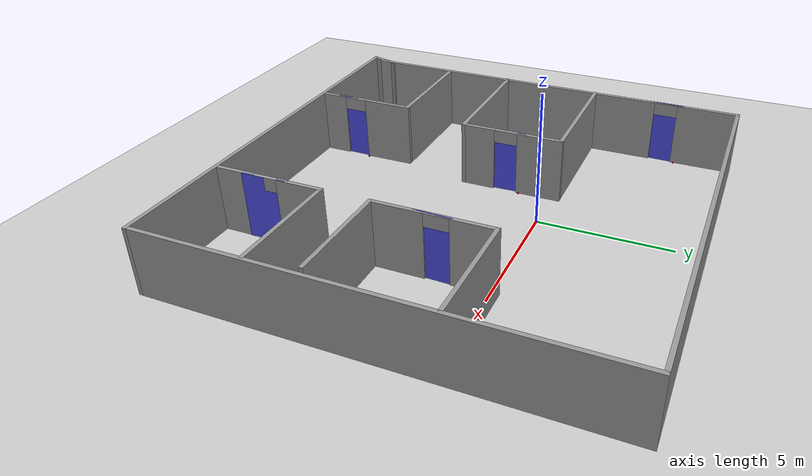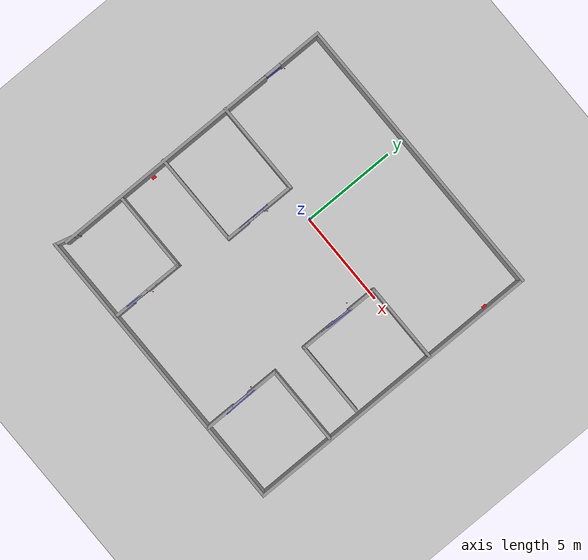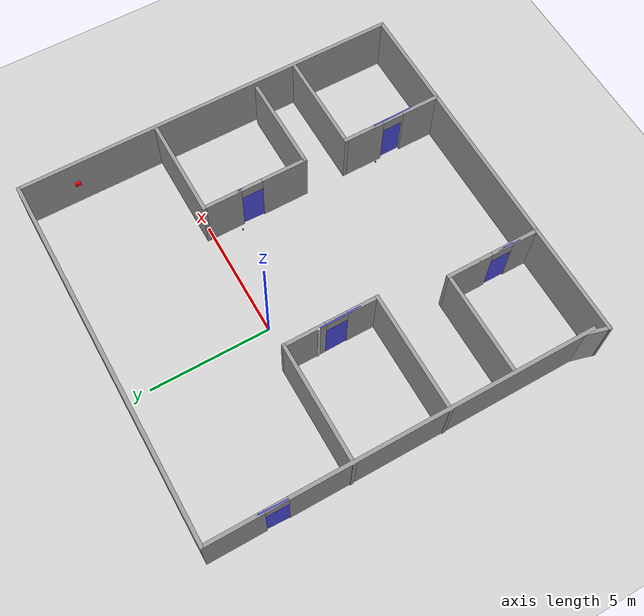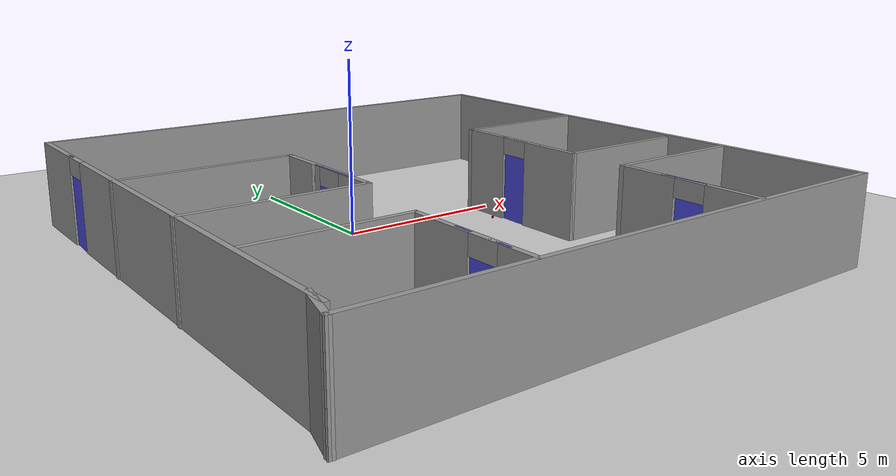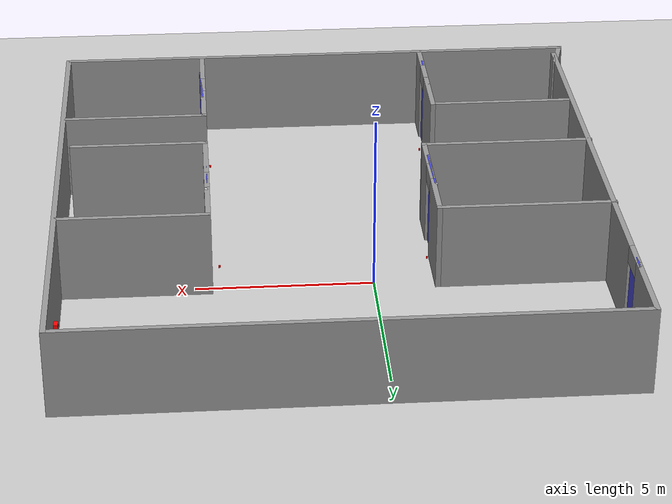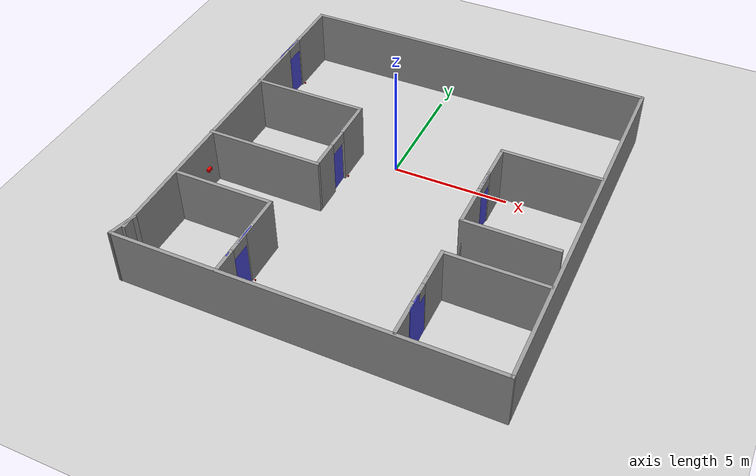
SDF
<sdf version="1.7">
 <world name="default">
  <light name="sun" type="directional">
   <pose>0 0 10 0 -0 0</pose>
   <diffuse>0.8 0.8 0.8 1</diffuse>
   <specular>0.2 0.2 0.2 1</specular>
   <attenuation>
    <range>1000</range>
    <constant>0.9</constant>
    <linear>0.01</linear>
    <quadratic>0.001</quadratic>
   </attenuation>
   <direction>-0.5 0.1 -0.9</direction>
   <spot><inner_angle>0</inner_angle><outer_angle>0</outer_angle><falloff>0</falloff></spot>
  </light>
  <model name="ground_plane">
   <static>1</static>
   <link name="link">
    <collision name="collision">
     <geometry><plane><normal>0 0 1</normal><size>100 100</size></plane></geometry>
     <surface><friction><ode><mu>100</mu><mu2>50</mu2></ode></friction></surface>
    </collision>
    <visual name="visual">
     <cast_shadows>0</cast_shadows>
     <geometry><plane><normal>0 0 1</normal><size>100 100</size></plane></geometry>
     <material>
      <script><uri>file://media/materials/scripts/gazebo.material</uri><name>Gazebo/Grey</name></script>
     </material>
    </visual>
   </link>
  </model>
  <gravity>0 0 -9.8</gravity>
  <magnetic_field>6e-06 2.3e-05 -4.2e-05</magnetic_field>
  <atmosphere type="adiabatic"/>
  <physics type="ode">
   <max_step_size>0.001</max_step_size>
   <real_time_factor>1</real_time_factor>
   <real_time_update_rate>1000</real_time_update_rate>
  </physics>
  <scene><ambient>0.4 0.4 0.4 1</ambient><background>0.7 0.7 0.7 1</background><shadows>1</shadows></scene>
  <spherical_coordinates>
   <surface_model>EARTH_WGS84</surface_model>
   <latitude_deg>0</latitude_deg>
   <longitude_deg>0</longitude_deg>
   <elevation>0</elevation>
   <heading_deg>0</heading_deg>
  </spherical_coordinates>
  <model name="jampworld2">
   <pose>0.955665 -2.09991 0 0 -0 0</pose>
   <link name="Wall_0">
    <pose>-7.54157 0.258428 0 0 -0 1.5708</pose>
    <visual name="Wall_0_Visual_0">
     <pose>-1.63923 0 1.25 0 -0 0</pose>
     <geometry><box><size>12.4715 0.15 2.5</size></box></geometry>
     <material>
      <script><uri>file://media/materials/scripts/gazebo.material</uri><name>Gazebo/Grey</name></script>
      <ambient>1 1 1 1</ambient>
     </material>
     <meta><layer>0</layer></meta>
    </visual>
    <collision name="Wall_0_Collision_0">
     <geometry><box><size>12.4715 0.15 2.5</size></box></geometry>
     <pose>-1.63923 0 1.25 0 -0 0</pose>
    </collision>
    <visual name="Wall_0_Visual_1">
     <pose>6.68577 0 1.25 0 -0 0</pose>
     <geometry><box><size>2.37845 0.15 2.5</size></box></geometry>
     <material>
      <script><uri>file://media/materials/scripts/gazebo.material</uri><name>Gazebo/Grey</name></script>
      <ambient>1 1 1 1</ambient>
     </material>
     <meta><layer>0</layer></meta>
    </visual>
    <collision name="Wall_0_Collision_1">
     <geometry><box><size>2.37845 0.15 2.5</size></box></geometry>
     <pose>6.68577 0 1.25 0 -0 0</pose>
    </collision>
    <visual name="Wall_0_Visual_2">
     <pose>5.04655 0 2.25 0 -0 0</pose>
     <geometry><box><size>0.9 0.15 0.5</size></box></geometry>
     <material>
      <script><uri>file://media/materials/scripts/gazebo.material</uri><name>Gazebo/Grey</name></script>
      <ambient>1 1 1 1</ambient>
     </material>
     <meta><layer>0</layer></meta>
    </visual>
    <collision name="Wall_0_Collision_2">
     <geometry><box><size>0.9 0.15 0.5</size></box></geometry>
     <pose>5.04655 0 2.25 0 -0 0</pose>
    </collision>
   </link>
   <link name="Wall_1">
    <collision name="Wall_1_Collision">
     <geometry><box><size>15.5 0.15 2.5</size></box></geometry>
     <pose>0 0 1.25 0 -0 0</pose>
    </collision>
    <visual name="Wall_1_Visual">
     <pose>0 0 1.25 0 -0 0</pose>
     <geometry><box><size>15.5 0.15 2.5</size></box></geometry>
     <material>
      <script><uri>file://media/materials/scripts/gazebo.material</uri><name>Gazebo/Grey</name></script>
      <ambient>1 1 1 1</ambient>
     </material>
     <meta><layer>0</layer></meta>
    </visual>
    <pose>0.133427 8.05843 0 0 -0 0</pose>
   </link>
   <link name="Wall_10">
    <collision name="Wall_10_Collision">
     <geometry><box><size>4.25 0.15 2.5</size></box></geometry>
     <pose>0 0 1.25 0 -0 0</pose>
    </collision>
    <visual name="Wall_10_Visual">
     <pose>0 0 1.25 0 -0 0</pose>
     <geometry><box><size>4.25 0.15 2.5</size></box></geometry>
     <material>
      <script><uri>file://media/materials/scripts/gazebo.material</uri><name>Gazebo/Grey</name></script>
      <ambient>1 1 1 1</ambient>
     </material>
     <meta><layer>0</layer></meta>
    </visual>
    <pose>5.67359 2.30713 0 0 -0 3.14159</pose>
   </link>
   <link name="Wall_11">
    <pose>3.62359 0.132134 0 0 -0 -1.5708</pose>
    <visual name="Wall_11_Visual_0">
     <pose>-1.42802 0 1.25 0 -0 0</pose>
     <geometry><box><size>1.64396 0.15 2.5</size></box></geometry>
     <material>
      <script><uri>file://media/materials/scripts/gazebo.material</uri><name>Gazebo/Grey</name></script>
      <ambient>1 1 1 1</ambient>
     </material>
     <meta><layer>0</layer></meta>
    </visual>
    <collision name="Wall_11_Collision_0">
     <geometry><box><size>1.64396 0.15 2.5</size></box></geometry>
     <pose>-1.42802 0 1.25 0 -0 0</pose>
    </collision>
    <visual name="Wall_11_Visual_1">
     <pose>1.27198 0 1.25 0 -0 0</pose>
     <geometry><box><size>1.95605 0.15 2.5</size></box></geometry>
     <material>
      <script><uri>file://media/materials/scripts/gazebo.material</uri><name>Gazebo/Grey</name></script>
      <ambient>1 1 1 1</ambient>
     </material>
     <meta><layer>0</layer></meta>
    </visual>
    <collision name="Wall_11_Collision_1">
     <geometry><box><size>1.95605 0.15 2.5</size></box></geometry>
     <pose>1.27198 0 1.25 0 -0 0</pose>
    </collision>
    <visual name="Wall_11_Visual_2">
     <pose>-0.156045 0 2.25 0 -0 0</pose>
     <geometry><box><size>0.9 0.15 0.5</size></box></geometry>
     <material>
      <script><uri>file://media/materials/scripts/gazebo.material</uri><name>Gazebo/Grey</name></script>
      <ambient>1 1 1 1</ambient>
     </material>
     <meta><layer>0</layer></meta>
    </visual>
    <collision name="Wall_11_Collision_2">
     <geometry><box><size>0.9 0.15 0.5</size></box></geometry>
     <pose>-0.156045 0 2.25 0 -0 0</pose>
    </collision>
   </link>
   <link name="Wall_12">
    <collision name="Wall_12_Collision">
     <geometry><box><size>4 0.15 2.5</size></box></geometry>
     <pose>0 0 1.25 0 -0 0</pose>
    </collision>
    <visual name="Wall_12_Visual">
     <pose>0 0 1.25 0 -0 0</pose>
     <geometry><box><size>4 0.15 2.5</size></box></geometry>
     <material>
      <script><uri>file://media/materials/scripts/gazebo.material</uri><name>Gazebo/Grey</name></script>
      <ambient>1 1 1 1</ambient>
     </material>
     <meta><layer>0</layer></meta>
    </visual>
    <pose>5.54859 -2.04287 0 0 -0 0</pose>
   </link>
   <link name="Wall_14">
    <collision name="Wall_14_Collision">
     <geometry><box><size>4.25 0.15 2.5</size></box></geometry>
     <pose>0 0 1.25 0 -0 0</pose>
    </collision>
    <visual name="Wall_14_Visual">
     <pose>0 0 1.25 0 -0 0</pose>
     <geometry><box><size>4.25 0.15 2.5</size></box></geometry>
     <material>
      <script><uri>file://media/materials/scripts/gazebo.material</uri><name>Gazebo/Grey</name></script>
      <ambient>1 1 1 1</ambient>
     </material>
     <meta><layer>0</layer></meta>
    </visual>
    <pose>-5.33799 -4.178 0 0 -0 0</pose>
   </link>
   <link name="Wall_15">
    <pose>-3.28799 -6.10299 0 0 -0 -1.5708</pose>
    <visual name="Wall_15_Visual_0">
     <pose>-1.02507 0 1.25 0 -0 0</pose>
     <geometry><box><size>1.94986 0.15 2.5</size></box></geometry>
     <material>
      <script><uri>file://media/materials/scripts/gazebo.material</uri><name>Gazebo/Grey</name></script>
      <ambient>1 1 1 1</ambient>
     </material>
     <meta><layer>0</layer></meta>
    </visual>
    <collision name="Wall_15_Collision_0">
     <geometry><box><size>1.94986 0.15 2.5</size></box></geometry>
     <pose>-1.02507 0 1.25 0 -0 0</pose>
    </collision>
    <visual name="Wall_15_Visual_1">
     <pose>1.42493 0 1.25 0 -0 0</pose>
     <geometry><box><size>1.15014 0.15 2.5</size></box></geometry>
     <material>
      <script><uri>file://media/materials/scripts/gazebo.material</uri><name>Gazebo/Grey</name></script>
      <ambient>1 1 1 1</ambient>
     </material>
     <meta><layer>0</layer></meta>
    </visual>
    <collision name="Wall_15_Collision_1">
     <geometry><box><size>1.15014 0.15 2.5</size></box></geometry>
     <pose>1.42493 0 1.25 0 -0 0</pose>
    </collision>
    <visual name="Wall_15_Visual_2">
     <pose>0.399857 0 2.25 0 -0 0</pose>
     <geometry><box><size>0.9 0.15 0.5</size></box></geometry>
     <material>
      <script><uri>file://media/materials/scripts/gazebo.material</uri><name>Gazebo/Grey</name></script>
      <ambient>1 1 1 1</ambient>
     </material>
     <meta><layer>0</layer></meta>
    </visual>
    <collision name="Wall_15_Collision_2">
     <geometry><box><size>0.9 0.15 0.5</size></box></geometry>
     <pose>0.399857 0 2.25 0 -0 0</pose>
    </collision>
   </link>
   <link name="Wall_17">
    <collision name="Wall_17_Collision">
     <geometry><box><size>4.25 0.15 2.5</size></box></geometry>
     <pose>0 0 1.25 0 -0 0</pose>
    </collision>
    <visual name="Wall_17_Visual">
     <pose>0 0 1.25 0 -0 0</pose>
     <geometry><box><size>4.25 0.15 2.5</size></box></geometry>
     <material>
      <script><uri>file://media/materials/scripts/gazebo.material</uri><name>Gazebo/Grey</name></script>
      <ambient>1 1 1 1</ambient>
     </material>
     <meta><layer>0</layer></meta>
    </visual>
    <pose>5.67359 -3.87209 0 0 -0 3.14159</pose>
   </link>
   <link name="Wall_18">
    <pose>3.62359 -5.92209 0 0 -0 -1.5708</pose>
    <visual name="Wall_18_Visual_0">
     <pose>-1.24184 0 1.25 0 -0 0</pose>
     <geometry><box><size>1.76632 0.15 2.5</size></box></geometry>
     <material>
      <script><uri>file://media/materials/scripts/gazebo.material</uri><name>Gazebo/Grey</name></script>
      <ambient>1 1 1 1</ambient>
     </material>
     <meta><layer>0</layer></meta>
    </visual>
    <collision name="Wall_18_Collision_0">
     <geometry><box><size>1.76632 0.15 2.5</size></box></geometry>
     <pose>-1.24184 0 1.25 0 -0 0</pose>
    </collision>
    <visual name="Wall_18_Visual_1">
     <pose>1.33316 0 1.25 0 -0 0</pose>
     <geometry><box><size>1.58368 0.15 2.5</size></box></geometry>
     <material>
      <script><uri>file://media/materials/scripts/gazebo.material</uri><name>Gazebo/Grey</name></script>
      <ambient>1 1 1 1</ambient>
     </material>
     <meta><layer>0</layer></meta>
    </visual>
    <collision name="Wall_18_Collision_1">
     <geometry><box><size>1.58368 0.15 2.5</size></box></geometry>
     <pose>1.33316 0 1.25 0 -0 0</pose>
    </collision>
    <visual name="Wall_18_Visual_2">
     <pose>0.091316 0 2.25 0 -0 0</pose>
     <geometry><box><size>0.9 0.15 0.5</size></box></geometry>
     <material>
      <script><uri>file://media/materials/scripts/gazebo.material</uri><name>Gazebo/Grey</name></script>
      <ambient>1 1 1 1</ambient>
     </material>
     <meta><layer>0</layer></meta>
    </visual>
    <collision name="Wall_18_Collision_2">
     <geometry><box><size>0.9 0.15 0.5</size></box></geometry>
     <pose>0.091316 0 2.25 0 -0 0</pose>
    </collision>
   </link>
   <link name="Wall_2">
    <collision name="Wall_2_Collision">
     <geometry><box><size>16.25 0.15 2.5</size></box></geometry>
     <pose>0 0 1.25 0 -0 0</pose>
    </collision>
    <visual name="Wall_2_Visual">
     <pose>0 0 1.25 0 -0 0</pose>
     <geometry><box><size>16.25 0.15 2.5</size></box></geometry>
     <material>
      <script><uri>file://media/materials/scripts/gazebo.material</uri><name>Gazebo/Grey</name></script>
      <ambient>1 1 1 1</ambient>
     </material>
     <meta><layer>0</layer></meta>
    </visual>
    <pose>7.80843 0.008428 0 0 -0 -1.5708</pose>
   </link>
   <link name="Wall_3">
    <collision name="Wall_3_Collision">
     <geometry><box><size>15.75 0.15 2.5</size></box></geometry>
     <pose>0 0 1.25 0 -0 0</pose>
    </collision>
    <visual name="Wall_3_Visual">
     <pose>0 0 1.25 0 -0 0</pose>
     <geometry><box><size>15.75 0.15 2.5</size></box></geometry>
     <material>
      <script><uri>file://media/materials/scripts/gazebo.material</uri><name>Gazebo/Grey</name></script>
      <ambient>1 1 1 1</ambient>
     </material>
     <meta><layer>0</layer></meta>
    </visual>
    <pose>0.008427 -8.04157 0 0 -0 3.14159</pose>
   </link>
   <link name="Wall_4">
    <collision name="Wall_4_Collision">
     <geometry><box><size>1.25 0.15 2.5</size></box></geometry>
     <pose>0 0 1.25 0 -0 0</pose>
    </collision>
    <visual name="Wall_4_Visual">
     <pose>0 0 1.25 0 -0 0</pose>
     <geometry><box><size>1.25 0.15 2.5</size></box></geometry>
     <material>
      <script><uri>file://media/materials/scripts/gazebo.material</uri><name>Gazebo/Grey</name></script>
      <ambient>1 1 1 1</ambient>
     </material>
     <meta><layer>0</layer></meta>
    </visual>
    <pose>-7.64922 -7.51031 0 0 -0 1.309</pose>
   </link>
   <link name="Wall_6">
    <collision name="Wall_6_Collision">
     <geometry><box><size>5 0.15 2.5</size></box></geometry>
     <pose>0 0 1.25 0 -0 0</pose>
    </collision>
    <visual name="Wall_6_Visual">
     <pose>0 0 1.25 0 -0 0</pose>
     <geometry><box><size>5 0.15 2.5</size></box></geometry>
     <material>
      <script><uri>file://media/materials/scripts/gazebo.material</uri><name>Gazebo/Grey</name></script>
      <ambient>1 1 1 1</ambient>
     </material>
     <meta><layer>0</layer></meta>
    </visual>
    <pose>-5.14653 2.36831 0 0 -0 0</pose>
   </link>
   <link name="Wall_7">
    <pose>-2.72153 0.443314 0 0 -0 -1.5708</pose>
    <visual name="Wall_7_Visual_0">
     <pose>-1.11684 0 1.25 0 -0 0</pose>
     <geometry><box><size>1.76632 0.15 2.5</size></box></geometry>
     <material>
      <script><uri>file://media/materials/scripts/gazebo.material</uri><name>Gazebo/Grey</name></script>
      <ambient>1 1 1 1</ambient>
     </material>
     <meta><layer>0</layer></meta>
    </visual>
    <collision name="Wall_7_Collision_0">
     <geometry><box><size>1.76632 0.15 2.5</size></box></geometry>
     <pose>-1.11684 0 1.25 0 -0 0</pose>
    </collision>
    <visual name="Wall_7_Visual_1">
     <pose>1.33316 0 1.25 0 -0 0</pose>
     <geometry><box><size>1.33368 0.15 2.5</size></box></geometry>
     <material>
      <script><uri>file://media/materials/scripts/gazebo.material</uri><name>Gazebo/Grey</name></script>
      <ambient>1 1 1 1</ambient>
     </material>
     <meta><layer>0</layer></meta>
    </visual>
    <collision name="Wall_7_Collision_1">
     <geometry><box><size>1.33368 0.15 2.5</size></box></geometry>
     <pose>1.33316 0 1.25 0 -0 0</pose>
    </collision>
    <visual name="Wall_7_Visual_2">
     <pose>0.216316 0 2.25 0 -0 0</pose>
     <geometry><box><size>0.9 0.15 0.5</size></box></geometry>
     <material>
      <script><uri>file://media/materials/scripts/gazebo.material</uri><name>Gazebo/Grey</name></script>
      <ambient>1 1 1 1</ambient>
     </material>
     <meta><layer>0</layer></meta>
    </visual>
    <collision name="Wall_7_Collision_2">
     <geometry><box><size>0.9 0.15 0.5</size></box></geometry>
     <pose>0.216316 0 2.25 0 -0 0</pose>
    </collision>
   </link>
   <link name="Wall_8">
    <collision name="Wall_8_Collision">
     <geometry><box><size>5 0.15 2.5</size></box></geometry>
     <pose>0 0 1.25 0 -0 0</pose>
    </collision>
    <visual name="Wall_8_Visual">
     <pose>0 0 1.25 0 -0 0</pose>
     <geometry><box><size>5 0.15 2.5</size></box></geometry>
     <material>
      <script><uri>file://media/materials/scripts/gazebo.material</uri><name>Gazebo/Grey</name></script>
      <ambient>1 1 1 1</ambient>
     </material>
     <meta><layer>0</layer></meta>
    </visual>
    <pose>-5.14653 -1.48169 0 0 -0 3.14159</pose>
   </link>
   <static>1</static>
  </model>
  <model name="door_customn1">
   <link name="door_frame">
    <pose>0.883124 0.004995 1.25 0 -0 0</pose>
    <kinematic>1</kinematic>
    <inertial>
     <inertia><ixx>1</ixx><ixy>0</ixy><ixz>0</ixz><iyy>1</iyy><iyz>0</iyz><izz>1</izz></inertia>
     <mass>1</mass>
    </inertial>
    <visual name="frame_visual">
     <geometry><box><size>0.1 0.1 2.5</size></box></geometry>
     <material>
      <ambient>0.7 0.7 0.7 1</ambient>
      <diffuse>0.8 0.8 0.8 1</diffuse>
      <shader type="pixel"/>
      <script><name>ModelPreview_9::door_frame::frame_visual_MATERIAL_</name><uri>__default__</uri></script>
     </material>
    </visual>
    <collision name="frame_collision">
     <geometry><box><size>0.1 1 2.5</size></box></geometry>
     <surface>
      <friction>
       <ode><mu>1</mu><mu2>1</mu2><fdir1>0 0 0</fdir1><slip1>0</slip1><slip2>0</slip2></ode>
       <torsional>
        <coefficient>1</coefficient>
        <patch_radius>0</patch_radius>
        <surface_radius>0</surface_radius>
        <use_patch_radius>1</use_patch_radius>
        <ode><slip>0</slip></ode>
       </torsional>
      </friction>
      <bounce><restitution_coefficient>0</restitution_coefficient><threshold>1e+06</threshold></bounce>
      <contact>
       <collide_without_contact>0</collide_without_contact>
       <collide_without_contact_bitmask>1</collide_without_contact_bitmask>
       <collide_bitmask>1</collide_bitmask>
       <ode>
        <soft_cfm>0</soft_cfm>
        <soft_erp>0.2</soft_erp>
        <kp>1e+13</kp>
        <kd>1</kd>
        <max_vel>0.01</max_vel>
        <min_depth>0</min_depth>
       </ode>
       <bullet>
        <split_impulse>1</split_impulse>
        <split_impulse_penetration_threshold>-0.01</split_impulse_penetration_threshold>
        <soft_cfm>0</soft_cfm>
        <soft_erp>0.2</soft_erp>
        <kp>1e+13</kp>
        <kd>1</kd>
       </bullet>
      </contact>
     </surface>
    </collision>
   </link>
   <link name="door">
    <kinematic>1</kinematic>
    <pose>0 0 1.25 0 -0 0</pose>
    <inertial>
     <inertia><ixx>1.83367</ixx><ixy>0</ixy><ixz>0</ixz><iyy>2.74098</iyy><iyz>0</iyz><izz>0.90878</izz></inertia>
     <mass>3.51924</mass>
    </inertial>
    <visual name="door_visual">
     <geometry><box><size>1.75963 0.05 2.5</size></box></geometry>
     <material>
      <ambient>0.2 0.2 0.8 1</ambient>
      <diffuse>0.3 0.3 0.9 1</diffuse>
      <shader type="pixel"/>
      <script><name>ModelPreview_9::door::door_visual_MATERIAL_</name><uri>__default__</uri></script>
     </material>
    </visual>
    <collision name="door_collision">
     <geometry><box><size>1.75963 0.05 2.5</size></box></geometry>
     <surface>
      <friction>
       <ode><mu>1</mu><mu2>1</mu2><fdir1>0 0 0</fdir1><slip1>0</slip1><slip2>0</slip2></ode>
       <torsional>
        <coefficient>1</coefficient>
        <patch_radius>0</patch_radius>
        <surface_radius>0</surface_radius>
        <use_patch_radius>1</use_patch_radius>
        <ode><slip>0</slip></ode>
       </torsional>
      </friction>
      <bounce><restitution_coefficient>0</restitution_coefficient><threshold>1e+06</threshold></bounce>
      <contact>
       <collide_without_contact>0</collide_without_contact>
       <collide_without_contact_bitmask>1</collide_without_contact_bitmask>
       <collide_bitmask>1</collide_bitmask>
       <ode>
        <soft_cfm>0</soft_cfm>
        <soft_erp>0.2</soft_erp>
        <kp>1e+13</kp>
        <kd>1</kd>
        <max_vel>0.01</max_vel>
        <min_depth>0</min_depth>
       </ode>
       <bullet>
        <split_impulse>1</split_impulse>
        <split_impulse_penetration_threshold>-0.01</split_impulse_penetration_threshold>
        <soft_cfm>0</soft_cfm>
        <soft_erp>0.2</soft_erp>
        <kp>1e+13</kp>
        <kd>1</kd>
       </bullet>
      </contact>
     </surface>
    </collision>
   </link>
   <joint name="door_joint" type="prismatic">
    <parent>door_frame</parent>
    <child>door</child>
    <axis>
     <xyz>1 0 0</xyz>
     <limit><lower>0</lower><upper>0.5</upper><effort>-1</effort><velocity>-1</velocity></limit>
     <dynamics>
      <spring_reference>0</spring_reference>
      <spring_stiffness>0</spring_stiffness>
      <damping>0</damping>
      <friction>0</friction>
     </dynamics>
    </axis>
    <physics>
     <ode><limit><cfm>0</cfm><erp>0.2</erp></limit><suspension><cfm>0</cfm><erp>0.2</erp></suspension></ode>
    </physics>
   </joint>
   <static>0</static>
   <plugin name="door_control_plugin" filename="libdoor_control_plugin.so">
    <door_joint>door_joint</door_joint>
    <speed>1.0</speed>
    <open_target>1.0</open_target>
    <close_target>0.0</close_target>
   </plugin>
   <pose>-1.79968 -1.99812 0 0 -0 1.58547</pose>
  </model>
  <model name="door_customn1_0">
   <link name="door_frame">
    <pose>0.883124 0.004995 1.25 0 -0 0</pose>
    <kinematic>1</kinematic>
    <inertial>
     <inertia><ixx>1</ixx><ixy>0</ixy><ixz>0</ixz><iyy>1</iyy><iyz>0</iyz><izz>1</izz></inertia>
     <mass>1</mass>
    </inertial>
    <visual name="frame_visual">
     <geometry><box><size>0.1 0.1 2.5</size></box></geometry>
     <material>
      <ambient>0.7 0.7 0.7 1</ambient>
      <diffuse>0.8 0.8 0.8 1</diffuse>
      <shader type="pixel"/>
      <script><name>ModelPreview_9::door_frame::frame_visual_MATERIAL_</name><uri>__default__</uri></script>
     </material>
    </visual>
    <collision name="frame_collision">
     <geometry><box><size>0.1 1 2.5</size></box></geometry>
     <surface>
      <friction>
       <ode><mu>1</mu><mu2>1</mu2><fdir1>0 0 0</fdir1><slip1>0</slip1><slip2>0</slip2></ode>
       <torsional>
        <coefficient>1</coefficient>
        <patch_radius>0</patch_radius>
        <surface_radius>0</surface_radius>
        <use_patch_radius>1</use_patch_radius>
        <ode><slip>0</slip></ode>
       </torsional>
      </friction>
      <bounce><restitution_coefficient>0</restitution_coefficient><threshold>1e+06</threshold></bounce>
      <contact>
       <collide_without_contact>0</collide_without_contact>
       <collide_without_contact_bitmask>1</collide_without_contact_bitmask>
       <collide_bitmask>1</collide_bitmask>
       <ode>
        <soft_cfm>0</soft_cfm>
        <soft_erp>0.2</soft_erp>
        <kp>1e+13</kp>
        <kd>1</kd>
        <max_vel>0.01</max_vel>
        <min_depth>0</min_depth>
       </ode>
       <bullet>
        <split_impulse>1</split_impulse>
        <split_impulse_penetration_threshold>-0.01</split_impulse_penetration_threshold>
        <soft_cfm>0</soft_cfm>
        <soft_erp>0.2</soft_erp>
        <kp>1e+13</kp>
        <kd>1</kd>
       </bullet>
      </contact>
     </surface>
    </collision>
   </link>
   <link name="door">
    <kinematic>1</kinematic>
    <pose>0 0 1.25 0 -0 0</pose>
    <inertial>
     <inertia><ixx>1.83367</ixx><ixy>0</ixy><ixz>0</ixz><iyy>2.74098</iyy><iyz>0</iyz><izz>0.90878</izz></inertia>
     <mass>3.51924</mass>
    </inertial>
    <visual name="door_visual">
     <geometry><box><size>1.75963 0.05 2.5</size></box></geometry>
     <material>
      <ambient>0.2 0.2 0.8 1</ambient>
      <diffuse>0.3 0.3 0.9 1</diffuse>
      <shader type="pixel"/>
      <script><name>ModelPreview_9::door::door_visual_MATERIAL_</name><uri>__default__</uri></script>
     </material>
    </visual>
    <collision name="door_collision">
     <geometry><box><size>1.75963 0.05 2.5</size></box></geometry>
     <surface>
      <friction>
       <ode><mu>1</mu><mu2>1</mu2><fdir1>0 0 0</fdir1><slip1>0</slip1><slip2>0</slip2></ode>
       <torsional>
        <coefficient>1</coefficient>
        <patch_radius>0</patch_radius>
        <surface_radius>0</surface_radius>
        <use_patch_radius>1</use_patch_radius>
        <ode><slip>0</slip></ode>
       </torsional>
      </friction>
      <bounce><restitution_coefficient>0</restitution_coefficient><threshold>1e+06</threshold></bounce>
      <contact>
       <collide_without_contact>0</collide_without_contact>
       <collide_without_contact_bitmask>1</collide_without_contact_bitmask>
       <collide_bitmask>1</collide_bitmask>
       <ode>
        <soft_cfm>0</soft_cfm>
        <soft_erp>0.2</soft_erp>
        <kp>1e+13</kp>
        <kd>1</kd>
        <max_vel>0.01</max_vel>
        <min_depth>0</min_depth>
       </ode>
       <bullet>
        <split_impulse>1</split_impulse>
        <split_impulse_penetration_threshold>-0.01</split_impulse_penetration_threshold>
        <soft_cfm>0</soft_cfm>
        <soft_erp>0.2</soft_erp>
        <kp>1e+13</kp>
        <kd>1</kd>
       </bullet>
      </contact>
     </surface>
    </collision>
   </link>
   <joint name="door_joint" type="prismatic">
    <parent>door_frame</parent>
    <child>door</child>
    <axis>
     <xyz>1 0 0</xyz>
     <limit><lower>0</lower><upper>0.5</upper><effort>-1</effort><velocity>-1</velocity></limit>
     <dynamics>
      <spring_reference>0</spring_reference>
      <spring_stiffness>0</spring_stiffness>
      <damping>0</damping>
      <friction>0</friction>
     </dynamics>
    </axis>
    <physics>
     <ode><limit><cfm>0</cfm><erp>0.2</erp></limit><suspension><cfm>0</cfm><erp>0.2</erp></suspension></ode>
    </physics>
   </joint>
   <static>0</static>
   <plugin name="door_control_plugin" filename="libdoor_control_plugin.so">
    <door_joint>door_joint</door_joint>
    <speed>1.0</speed>
    <open_target>1.0</open_target>
    <close_target>0.0</close_target>
   </plugin>
   <pose>4.57067 -2.13854 0 0 -0 1.53819</pose>
  </model>
  <model name="door_customn1_1">
   <link name="door_frame">
    <pose>0.883124 0.004995 1.25 0 -0 0</pose>
    <kinematic>1</kinematic>
    <inertial>
     <inertia><ixx>1</ixx><ixy>0</ixy><ixz>0</ixz><iyy>1</iyy><iyz>0</iyz><izz>1</izz></inertia>
     <mass>1</mass>
    </inertial>
    <visual name="frame_visual">
     <geometry><box><size>0.1 0.1 2.5</size></box></geometry>
     <material>
      <ambient>0.7 0.7 0.7 1</ambient>
      <diffuse>0.8 0.8 0.8 1</diffuse>
      <shader type="pixel"/>
      <script><name>ModelPreview_9::door_frame::frame_visual_MATERIAL_</name><uri>__default__</uri></script>
     </material>
    </visual>
    <collision name="frame_collision">
     <geometry><box><size>0.1 1 2.5</size></box></geometry>
     <surface>
      <friction>
       <ode><mu>1</mu><mu2>1</mu2><fdir1>0 0 0</fdir1><slip1>0</slip1><slip2>0</slip2></ode>
       <torsional>
        <coefficient>1</coefficient>
        <patch_radius>0</patch_radius>
        <surface_radius>0</surface_radius>
        <use_patch_radius>1</use_patch_radius>
        <ode><slip>0</slip></ode>
       </torsional>
      </friction>
      <bounce><restitution_coefficient>0</restitution_coefficient><threshold>1e+06</threshold></bounce>
      <contact>
       <collide_without_contact>0</collide_without_contact>
       <collide_without_contact_bitmask>1</collide_without_contact_bitmask>
       <collide_bitmask>1</collide_bitmask>
       <ode>
        <soft_cfm>0</soft_cfm>
        <soft_erp>0.2</soft_erp>
        <kp>1e+13</kp>
        <kd>1</kd>
        <max_vel>0.01</max_vel>
        <min_depth>0</min_depth>
       </ode>
       <bullet>
        <split_impulse>1</split_impulse>
        <split_impulse_penetration_threshold>-0.01</split_impulse_penetration_threshold>
        <soft_cfm>0</soft_cfm>
        <soft_erp>0.2</soft_erp>
        <kp>1e+13</kp>
        <kd>1</kd>
       </bullet>
      </contact>
     </surface>
    </collision>
   </link>
   <link name="door">
    <kinematic>1</kinematic>
    <pose>0 0 1.25 0 -0 0</pose>
    <inertial>
     <inertia><ixx>1.83367</ixx><ixy>0</ixy><ixz>0</ixz><iyy>2.74098</iyy><iyz>0</iyz><izz>0.90878</izz></inertia>
     <mass>3.51924</mass>
    </inertial>
    <visual name="door_visual">
     <geometry><box><size>1.75963 0.05 2.5</size></box></geometry>
     <material>
      <ambient>0.2 0.2 0.8 1</ambient>
      <diffuse>0.3 0.3 0.9 1</diffuse>
      <shader type="pixel"/>
      <script><name>ModelPreview_9::door::door_visual_MATERIAL_</name><uri>__default__</uri></script>
     </material>
    </visual>
    <collision name="door_collision">
     <geometry><box><size>1.75963 0.05 2.5</size></box></geometry>
     <surface>
      <friction>
       <ode><mu>1</mu><mu2>1</mu2><fdir1>0 0 0</fdir1><slip1>0</slip1><slip2>0</slip2></ode>
       <torsional>
        <coefficient>1</coefficient>
        <patch_radius>0</patch_radius>
        <surface_radius>0</surface_radius>
        <use_patch_radius>1</use_patch_radius>
        <ode><slip>0</slip></ode>
       </torsional>
      </friction>
      <bounce><restitution_coefficient>0</restitution_coefficient><threshold>1e+06</threshold></bounce>
      <contact>
       <collide_without_contact>0</collide_without_contact>
       <collide_without_contact_bitmask>1</collide_without_contact_bitmask>
       <collide_bitmask>1</collide_bitmask>
       <ode>
        <soft_cfm>0</soft_cfm>
        <soft_erp>0.2</soft_erp>
        <kp>1e+13</kp>
        <kd>1</kd>
        <max_vel>0.01</max_vel>
        <min_depth>0</min_depth>
       </ode>
       <bullet>
        <split_impulse>1</split_impulse>
        <split_impulse_penetration_threshold>-0.01</split_impulse_penetration_threshold>
        <soft_cfm>0</soft_cfm>
        <soft_erp>0.2</soft_erp>
        <kp>1e+13</kp>
        <kd>1</kd>
       </bullet>
      </contact>
     </surface>
    </collision>
   </link>
   <joint name="door_joint" type="prismatic">
    <parent>door_frame</parent>
    <child>door</child>
    <axis>
     <xyz>1 0 0</xyz>
     <limit><lower>0</lower><upper>0.5</upper><effort>-1</effort><velocity>-1</velocity></limit>
     <dynamics>
      <spring_reference>0</spring_reference>
      <spring_stiffness>0</spring_stiffness>
      <damping>0</damping>
      <friction>0</friction>
     </dynamics>
    </axis>
    <physics>
     <ode><limit><cfm>0</cfm><erp>0.2</erp></limit><suspension><cfm>0</cfm><erp>0.2</erp></suspension></ode>
    </physics>
   </joint>
   <static>0</static>
   <plugin name="door_control_plugin" filename="libdoor_control_plugin.so">
    <door_joint>door_joint</door_joint>
    <speed>1.0</speed>
    <open_target>1.0</open_target>
    <close_target>0.0</close_target>
   </plugin>
   <pose>4.62913 -8.13962 0 0 -0 1.59602</pose>
  </model>
  <model name="door_customn1_2">
   <link name="door_frame">
    <pose>0.883124 0.004995 1.25 0 -0 0</pose>
    <kinematic>1</kinematic>
    <inertial>
     <inertia><ixx>1</ixx><ixy>0</ixy><ixz>0</ixz><iyy>1</iyy><iyz>0</iyz><izz>1</izz></inertia>
     <mass>1</mass>
    </inertial>
    <visual name="frame_visual">
     <geometry><box><size>0.1 0.1 2.5</size></box></geometry>
     <material>
      <ambient>0.7 0.7 0.7 1</ambient>
      <diffuse>0.8 0.8 0.8 1</diffuse>
      <shader type="pixel"/>
      <script><name>ModelPreview_9::door_frame::frame_visual_MATERIAL_</name><uri>__default__</uri></script>
     </material>
    </visual>
    <collision name="frame_collision">
     <geometry><box><size>0.1 1 2.5</size></box></geometry>
     <surface>
      <friction>
       <ode><mu>1</mu><mu2>1</mu2><fdir1>0 0 0</fdir1><slip1>0</slip1><slip2>0</slip2></ode>
       <torsional>
        <coefficient>1</coefficient>
        <patch_radius>0</patch_radius>
        <surface_radius>0</surface_radius>
        <use_patch_radius>1</use_patch_radius>
        <ode><slip>0</slip></ode>
       </torsional>
      </friction>
      <bounce><restitution_coefficient>0</restitution_coefficient><threshold>1e+06</threshold></bounce>
      <contact>
       <collide_without_contact>0</collide_without_contact>
       <collide_without_contact_bitmask>1</collide_without_contact_bitmask>
       <collide_bitmask>1</collide_bitmask>
       <ode>
        <soft_cfm>0</soft_cfm>
        <soft_erp>0.2</soft_erp>
        <kp>1e+13</kp>
        <kd>1</kd>
        <max_vel>0.01</max_vel>
        <min_depth>0</min_depth>
       </ode>
       <bullet>
        <split_impulse>1</split_impulse>
        <split_impulse_penetration_threshold>-0.01</split_impulse_penetration_threshold>
        <soft_cfm>0</soft_cfm>
        <soft_erp>0.2</soft_erp>
        <kp>1e+13</kp>
        <kd>1</kd>
       </bullet>
      </contact>
     </surface>
    </collision>
   </link>
   <link name="door">
    <kinematic>1</kinematic>
    <pose>0 0 1.25 0 -0 0</pose>
    <inertial>
     <inertia><ixx>1.83367</ixx><ixy>0</ixy><ixz>0</ixz><iyy>2.74098</iyy><iyz>0</iyz><izz>0.90878</izz></inertia>
     <mass>3.51924</mass>
    </inertial>
    <visual name="door_visual">
     <geometry><box><size>1.75963 0.05 2.5</size></box></geometry>
     <material>
      <ambient>0.2 0.2 0.8 1</ambient>
      <diffuse>0.3 0.3 0.9 1</diffuse>
      <shader type="pixel"/>
      <script><name>ModelPreview_9::door::door_visual_MATERIAL_</name><uri>__default__</uri></script>
     </material>
    </visual>
    <collision name="door_collision">
     <geometry><box><size>1.75963 0.05 2.5</size></box></geometry>
     <surface>
      <friction>
       <ode><mu>1</mu><mu2>1</mu2><fdir1>0 0 0</fdir1><slip1>0</slip1><slip2>0</slip2></ode>
       <torsional>
        <coefficient>1</coefficient>
        <patch_radius>0</patch_radius>
        <surface_radius>0</surface_radius>
        <use_patch_radius>1</use_patch_radius>
        <ode><slip>0</slip></ode>
       </torsional>
      </friction>
      <bounce><restitution_coefficient>0</restitution_coefficient><threshold>1e+06</threshold></bounce>
      <contact>
       <collide_without_contact>0</collide_without_contact>
       <collide_without_contact_bitmask>1</collide_without_contact_bitmask>
       <collide_bitmask>1</collide_bitmask>
       <ode>
        <soft_cfm>0</soft_cfm>
        <soft_erp>0.2</soft_erp>
        <kp>1e+13</kp>
        <kd>1</kd>
        <max_vel>0.01</max_vel>
        <min_depth>0</min_depth>
       </ode>
       <bullet>
        <split_impulse>1</split_impulse>
        <split_impulse_penetration_threshold>-0.01</split_impulse_penetration_threshold>
        <soft_cfm>0</soft_cfm>
        <soft_erp>0.2</soft_erp>
        <kp>1e+13</kp>
        <kd>1</kd>
       </bullet>
      </contact>
     </surface>
    </collision>
   </link>
   <joint name="door_joint" type="prismatic">
    <parent>door_frame</parent>
    <child>door</child>
    <axis>
     <xyz>1 0 0</xyz>
     <limit><lower>0</lower><upper>0.5</upper><effort>-1</effort><velocity>-1</velocity></limit>
     <dynamics>
      <spring_reference>0</spring_reference>
      <spring_stiffness>0</spring_stiffness>
      <damping>0</damping>
      <friction>0</friction>
     </dynamics>
    </axis>
    <physics>
     <ode><limit><cfm>0</cfm><erp>0.2</erp></limit><suspension><cfm>0</cfm><erp>0.2</erp></suspension></ode>
    </physics>
   </joint>
   <static>0</static>
   <plugin name="door_control_plugin" filename="libdoor_control_plugin.so">
    <door_joint>door_joint</door_joint>
    <speed>1.0</speed>
    <open_target>1.0</open_target>
    <close_target>0.0</close_target>
   </plugin>
   <pose>-2.33717 -8.51574 0 0 -0 1.55322</pose>
  </model>
  <model name="door_customn1_3">
   <link name="door_frame">
    <pose>0.883124 0.004995 1.25 0 -0 0</pose>
    <kinematic>1</kinematic>
    <inertial>
     <inertia><ixx>1</ixx><ixy>0</ixy><ixz>0</ixz><iyy>1</iyy><iyz>0</iyz><izz>1</izz></inertia>
     <mass>1</mass>
    </inertial>
    <visual name="frame_visual">
     <geometry><box><size>0.1 0.1 2.5</size></box></geometry>
     <material>
      <ambient>0.7 0.7 0.7 1</ambient>
      <diffuse>0.8 0.8 0.8 1</diffuse>
      <shader type="pixel"/>
      <script><name>ModelPreview_9::door_frame::frame_visual_MATERIAL_</name><uri>__default__</uri></script>
     </material>
    </visual>
    <collision name="frame_collision">
     <geometry><box><size>0.1 1 2.5</size></box></geometry>
     <surface>
      <friction>
       <ode><mu>1</mu><mu2>1</mu2><fdir1>0 0 0</fdir1><slip1>0</slip1><slip2>0</slip2></ode>
       <torsional>
        <coefficient>1</coefficient>
        <patch_radius>0</patch_radius>
        <surface_radius>0</surface_radius>
        <use_patch_radius>1</use_patch_radius>
        <ode><slip>0</slip></ode>
       </torsional>
      </friction>
      <bounce><restitution_coefficient>0</restitution_coefficient><threshold>1e+06</threshold></bounce>
      <contact>
       <collide_without_contact>0</collide_without_contact>
       <collide_without_contact_bitmask>1</collide_without_contact_bitmask>
       <collide_bitmask>1</collide_bitmask>
       <ode>
        <soft_cfm>0</soft_cfm>
        <soft_erp>0.2</soft_erp>
        <kp>1e+13</kp>
        <kd>1</kd>
        <max_vel>0.01</max_vel>
        <min_depth>0</min_depth>
       </ode>
       <bullet>
        <split_impulse>1</split_impulse>
        <split_impulse_penetration_threshold>-0.01</split_impulse_penetration_threshold>
        <soft_cfm>0</soft_cfm>
        <soft_erp>0.2</soft_erp>
        <kp>1e+13</kp>
        <kd>1</kd>
       </bullet>
      </contact>
     </surface>
    </collision>
   </link>
   <link name="door">
    <kinematic>1</kinematic>
    <pose>0 0 1.25 0 -0 0</pose>
    <inertial>
     <inertia><ixx>1.83367</ixx><ixy>0</ixy><ixz>0</ixz><iyy>2.74098</iyy><iyz>0</iyz><izz>0.90878</izz></inertia>
     <mass>3.51924</mass>
    </inertial>
    <visual name="door_visual">
     <geometry><box><size>1.75963 0.05 2.5</size></box></geometry>
     <material>
      <ambient>0.2 0.2 0.8 1</ambient>
      <diffuse>0.3 0.3 0.9 1</diffuse>
      <shader type="pixel"/>
      <script><name>ModelPreview_9::door::door_visual_MATERIAL_</name><uri>__default__</uri></script>
     </material>
    </visual>
    <collision name="door_collision">
     <geometry><box><size>1.75963 0.05 2.5</size></box></geometry>
     <surface>
      <friction>
       <ode><mu>1</mu><mu2>1</mu2><fdir1>0 0 0</fdir1><slip1>0</slip1><slip2>0</slip2></ode>
       <torsional>
        <coefficient>1</coefficient>
        <patch_radius>0</patch_radius>
        <surface_radius>0</surface_radius>
        <use_patch_radius>1</use_patch_radius>
        <ode><slip>0</slip></ode>
       </torsional>
      </friction>
      <bounce><restitution_coefficient>0</restitution_coefficient><threshold>1e+06</threshold></bounce>
      <contact>
       <collide_without_contact>0</collide_without_contact>
       <collide_without_contact_bitmask>1</collide_without_contact_bitmask>
       <collide_bitmask>1</collide_bitmask>
       <ode>
        <soft_cfm>0</soft_cfm>
        <soft_erp>0.2</soft_erp>
        <kp>1e+13</kp>
        <kd>1</kd>
        <max_vel>0.01</max_vel>
        <min_depth>0</min_depth>
       </ode>
       <bullet>
        <split_impulse>1</split_impulse>
        <split_impulse_penetration_threshold>-0.01</split_impulse_penetration_threshold>
        <soft_cfm>0</soft_cfm>
        <soft_erp>0.2</soft_erp>
        <kp>1e+13</kp>
        <kd>1</kd>
       </bullet>
      </contact>
     </surface>
    </collision>
   </link>
   <joint name="door_joint" type="prismatic">
    <parent>door_frame</parent>
    <child>door</child>
    <axis>
     <xyz>1 0 0</xyz>
     <limit><lower>0</lower><upper>0.5</upper><effort>-1</effort><velocity>-1</velocity></limit>
     <dynamics>
      <spring_reference>0</spring_reference>
      <spring_stiffness>0</spring_stiffness>
      <damping>0</damping>
      <friction>0</friction>
     </dynamics>
    </axis>
    <physics>
     <ode><limit><cfm>0</cfm><erp>0.2</erp></limit><suspension><cfm>0</cfm><erp>0.2</erp></suspension></ode>
    </physics>
   </joint>
   <static>0</static>
   <plugin name="door_control_plugin" filename="libdoor_control_plugin.so">
    <door_joint>door_joint</door_joint>
    <speed>1.0</speed>
    <open_target>1.0</open_target>
    <close_target>0.0</close_target>
   </plugin>
   <pose>-6.6054 3.00198 -0 0 -0 1.5391</pose>
  </model>
  <model name="SimpleSensor">
   <link name="link_1">
    <inertial>
     <mass>0.00014111</mass>
     <inertia><ixx>7e-08</ixx><ixy>0</ixy><ixz>0</ixz><iyy>7e-08</iyy><iyz>0</iyz><izz>6e-08</izz></inertia>
    </inertial>
    <visual name="visual">
     <geometry><box><size>0.048286 0.048861 0.059852</size></box></geometry>
     <material>
      <lighting>1</lighting>
      <script><uri>file://media/materials/scripts/gazebo.material</uri><name>Gazebo/Grey</name></script>
      <shader type="pixel"><normal_map>__default__</normal_map></shader>
      <ambient>1 0 0 1</ambient>
      <diffuse>0.7 0.7 0.7 1</diffuse>
      <specular>0.01 0.01 0.01 1</specular>
      <emissive>0 0 0 1</emissive>
     </material>
    </visual>
    <collision name="collision">
     <geometry><box><size>0.048286 0.048861 0.059852</size></box></geometry>
     <surface>
      <friction>
       <ode><mu>1</mu><mu2>1</mu2><fdir1>0 0 0</fdir1><slip1>0</slip1><slip2>0</slip2></ode>
       <torsional>
        <coefficient>1</coefficient>
        <patch_radius>0</patch_radius>
        <surface_radius>0</surface_radius>
        <use_patch_radius>1</use_patch_radius>
        <ode><slip>0</slip></ode>
       </torsional>
      </friction>
      <bounce><restitution_coefficient>0</restitution_coefficient><threshold>1e+06</threshold></bounce>
      <contact>
       <collide_without_contact>0</collide_without_contact>
       <collide_without_contact_bitmask>1</collide_without_contact_bitmask>
       <collide_bitmask>1</collide_bitmask>
       <ode>
        <soft_cfm>0</soft_cfm>
        <soft_erp>0.2</soft_erp>
        <kp>1e+13</kp>
        <kd>1</kd>
        <max_vel>0.01</max_vel>
        <min_depth>0</min_depth>
       </ode>
       <bullet>
        <split_impulse>1</split_impulse>
        <split_impulse_penetration_threshold>-0.01</split_impulse_penetration_threshold>
        <soft_cfm>0</soft_cfm>
        <soft_erp>0.2</soft_erp>
        <kp>1e+13</kp>
        <kd>1</kd>
       </bullet>
      </contact>
     </surface>
    </collision>
   </link>
   <static>0</static>
   <pose>-2.1738 -8.08721 0.029926 0 1e-06 -0.005387</pose>
  </model>
  <model name="SimpleSensor_0">
   <link name="link_1">
    <inertial>
     <mass>0.00014111</mass>
     <inertia><ixx>7e-08</ixx><ixy>0</ixy><ixz>0</ixz><iyy>7e-08</iyy><iyz>0</iyz><izz>6e-08</izz></inertia>
    </inertial>
    <visual name="visual">
     <geometry><box><size>0.048286 0.048861 0.059852</size></box></geometry>
     <material>
      <lighting>1</lighting>
      <script><uri>file://media/materials/scripts/gazebo.material</uri><name>Gazebo/Grey</name></script>
      <shader type="pixel"><normal_map>__default__</normal_map></shader>
      <ambient>1 0 0 1</ambient>
      <diffuse>0.7 0.7 0.7 1</diffuse>
      <specular>0.01 0.01 0.01 1</specular>
      <emissive>0 0 0 1</emissive>
     </material>
    </visual>
    <collision name="collision">
     <geometry><box><size>0.048286 0.048861 0.059852</size></box></geometry>
     <surface>
      <friction>
       <ode><mu>1</mu><mu2>1</mu2><fdir1>0 0 0</fdir1><slip1>0</slip1><slip2>0</slip2></ode>
       <torsional>
        <coefficient>1</coefficient>
        <patch_radius>0</patch_radius>
        <surface_radius>0</surface_radius>
        <use_patch_radius>1</use_patch_radius>
        <ode><slip>0</slip></ode>
       </torsional>
      </friction>
      <bounce><restitution_coefficient>0</restitution_coefficient><threshold>1e+06</threshold></bounce>
      <contact>
       <collide_without_contact>0</collide_without_contact>
       <collide_without_contact_bitmask>1</collide_without_contact_bitmask>
       <collide_bitmask>1</collide_bitmask>
       <ode>
        <soft_cfm>0</soft_cfm>
        <soft_erp>0.2</soft_erp>
        <kp>1e+13</kp>
        <kd>1</kd>
        <max_vel>0.01</max_vel>
        <min_depth>0</min_depth>
       </ode>
       <bullet>
        <split_impulse>1</split_impulse>
        <split_impulse_penetration_threshold>-0.01</split_impulse_penetration_threshold>
        <soft_cfm>0</soft_cfm>
        <soft_erp>0.2</soft_erp>
        <kp>1e+13</kp>
        <kd>1</kd>
       </bullet>
      </contact>
     </surface>
    </collision>
   </link>
   <static>0</static>
   <pose>-1.64027 -1.27706 0.029921 8.9e-05 0.00011 -0.005173</pose>
  </model>
  <model name="SimpleSensor_1">
   <link name="link_1">
    <inertial>
     <mass>0.00014111</mass>
     <inertia><ixx>7e-08</ixx><ixy>0</ixy><ixz>0</ixz><iyy>7e-08</iyy><iyz>0</iyz><izz>6e-08</izz></inertia>
    </inertial>
    <visual name="visual">
     <geometry><box><size>0.048286 0.048861 0.059852</size></box></geometry>
     <material>
      <lighting>1</lighting>
      <script><uri>file://media/materials/scripts/gazebo.material</uri><name>Gazebo/Grey</name></script>
      <shader type="pixel"><normal_map>__default__</normal_map></shader>
      <ambient>1 0 0 1</ambient>
      <diffuse>0.7 0.7 0.7 1</diffuse>
      <specular>0.01 0.01 0.01 1</specular>
      <emissive>0 0 0 1</emissive>
     </material>
    </visual>
    <collision name="collision">
     <geometry><box><size>0.048286 0.048861 0.059852</size></box></geometry>
     <surface>
      <friction>
       <ode><mu>1</mu><mu2>1</mu2><fdir1>0 0 0</fdir1><slip1>0</slip1><slip2>0</slip2></ode>
       <torsional>
        <coefficient>1</coefficient>
        <patch_radius>0</patch_radius>
        <surface_radius>0</surface_radius>
        <use_patch_radius>1</use_patch_radius>
        <ode><slip>0</slip></ode>
       </torsional>
      </friction>
      <bounce><restitution_coefficient>0</restitution_coefficient><threshold>1e+06</threshold></bounce>
      <contact>
       <collide_without_contact>0</collide_without_contact>
       <collide_without_contact_bitmask>1</collide_without_contact_bitmask>
       <collide_bitmask>1</collide_bitmask>
       <ode>
        <soft_cfm>0</soft_cfm>
        <soft_erp>0.2</soft_erp>
        <kp>1e+13</kp>
        <kd>1</kd>
        <max_vel>0.01</max_vel>
        <min_depth>0</min_depth>
       </ode>
       <bullet>
        <split_impulse>1</split_impulse>
        <split_impulse_penetration_threshold>-0.01</split_impulse_penetration_threshold>
        <soft_cfm>0</soft_cfm>
        <soft_erp>0.2</soft_erp>
        <kp>1e+13</kp>
        <kd>1</kd>
       </bullet>
      </contact>
     </surface>
    </collision>
   </link>
   <static>0</static>
   <pose>4.4353 -7.39159 0.029927 -2.6e-05 -2e-06 -0.004727</pose>
  </model>
  <model name="SimpleSensor_2">
   <link name="link_1">
    <inertial>
     <mass>0.00014111</mass>
     <inertia><ixx>7e-08</ixx><ixy>0</ixy><ixz>0</ixz><iyy>7e-08</iyy><iyz>0</iyz><izz>6e-08</izz></inertia>
    </inertial>
    <visual name="visual">
     <geometry><box><size>0.048286 0.048861 0.059852</size></box></geometry>
     <material>
      <lighting>1</lighting>
      <script><uri>file://media/materials/scripts/gazebo.material</uri><name>Gazebo/Grey</name></script>
      <shader type="pixel"><normal_map>__default__</normal_map></shader>
      <ambient>1 0 0 1</ambient>
      <diffuse>0.7 0.7 0.7 1</diffuse>
      <specular>0.01 0.01 0.01 1</specular>
      <emissive>0 0 0 1</emissive>
     </material>
    </visual>
    <collision name="collision">
     <geometry><box><size>0.048286 0.048861 0.059852</size></box></geometry>
     <surface>
      <friction>
       <ode><mu>1</mu><mu2>1</mu2><fdir1>0 0 0</fdir1><slip1>0</slip1><slip2>0</slip2></ode>
       <torsional>
        <coefficient>1</coefficient>
        <patch_radius>0</patch_radius>
        <surface_radius>0</surface_radius>
        <use_patch_radius>1</use_patch_radius>
        <ode><slip>0</slip></ode>
       </torsional>
      </friction>
      <bounce><restitution_coefficient>0</restitution_coefficient><threshold>1e+06</threshold></bounce>
      <contact>
       <collide_without_contact>0</collide_without_contact>
       <collide_without_contact_bitmask>1</collide_without_contact_bitmask>
       <collide_bitmask>1</collide_bitmask>
       <ode>
        <soft_cfm>0</soft_cfm>
        <soft_erp>0.2</soft_erp>
        <kp>1e+13</kp>
        <kd>1</kd>
        <max_vel>0.01</max_vel>
        <min_depth>0</min_depth>
       </ode>
       <bullet>
        <split_impulse>1</split_impulse>
        <split_impulse_penetration_threshold>-0.01</split_impulse_penetration_threshold>
        <soft_cfm>0</soft_cfm>
        <soft_erp>0.2</soft_erp>
        <kp>1e+13</kp>
        <kd>1</kd>
       </bullet>
      </contact>
     </surface>
    </collision>
   </link>
   <static>0</static>
   <pose>4.28896 -1.17066 0.029927 2.6e-05 2e-06 -0.035503</pose>
  </model>
  <model name="SimpleSensor_3">
   <link name="link_1">
    <inertial>
     <mass>0.00014111</mass>
     <inertia><ixx>7e-08</ixx><ixy>0</ixy><ixz>0</ixz><iyy>7e-08</iyy><iyz>0</iyz><izz>6e-08</izz></inertia>
    </inertial>
    <visual name="visual">
     <geometry><box><size>0.048286 0.048861 0.059852</size></box></geometry>
     <material>
      <lighting>1</lighting>
      <script><uri>file://media/materials/scripts/gazebo.material</uri><name>Gazebo/Grey</name></script>
      <shader type="pixel"><normal_map>__default__</normal_map></shader>
      <ambient>1 0 0 1</ambient>
      <diffuse>0.7 0.7 0.7 1</diffuse>
      <specular>0.01 0.01 0.01 1</specular>
      <emissive>0 0 0 1</emissive>
     </material>
    </visual>
    <collision name="collision">
     <geometry><box><size>0.048286 0.048861 0.059852</size></box></geometry>
     <surface>
      <friction>
       <ode><mu>1</mu><mu2>1</mu2><fdir1>0 0 0</fdir1><slip1>0</slip1><slip2>0</slip2></ode>
       <torsional>
        <coefficient>1</coefficient>
        <patch_radius>0</patch_radius>
        <surface_radius>0</surface_radius>
        <use_patch_radius>1</use_patch_radius>
        <ode><slip>0</slip></ode>
       </torsional>
      </friction>
      <bounce><restitution_coefficient>0</restitution_coefficient><threshold>1e+06</threshold></bounce>
      <contact>
       <collide_without_contact>0</collide_without_contact>
       <collide_without_contact_bitmask>1</collide_without_contact_bitmask>
       <collide_bitmask>1</collide_bitmask>
       <ode>
        <soft_cfm>0</soft_cfm>
        <soft_erp>0.2</soft_erp>
        <kp>1e+13</kp>
        <kd>1</kd>
        <max_vel>0.01</max_vel>
        <min_depth>0</min_depth>
       </ode>
       <bullet>
        <split_impulse>1</split_impulse>
        <split_impulse_penetration_threshold>-0.01</split_impulse_penetration_threshold>
        <soft_cfm>0</soft_cfm>
        <soft_erp>0.2</soft_erp>
        <kp>1e+13</kp>
        <kd>1</kd>
       </bullet>
      </contact>
     </surface>
    </collision>
   </link>
   <static>0</static>
   <pose>-6.44426 3.80506 0.029926 -0 1e-06 -0.025902</pose>
  </model>
  <model name="SimpleCamera">
   <link name="link_1">
    <inertial>
     <mass>0.00014152</mass>
     <inertia><ixx>8.3e-07</ixx><ixy>0</ixy><ixz>0</ixz><iyy>4e-07</iyy><iyz>0</iyz><izz>7.7e-07</izz></inertia>
    </inertial>
    <gravity>0</gravity>
    <visual name="visual">
     <geometry><box><size>0.119276 0.225925 0.14044</size></box></geometry>
     <material>
      <lighting>1</lighting>
      <script><uri>file://media/materials/scripts/gazebo.material</uri><name>Gazebo/Grey</name></script>
      <shader type="pixel"><normal_map>__default__</normal_map></shader>
      <ambient>1 0 0 1</ambient>
      <diffuse>0.7 0.7 0.7 1</diffuse>
      <specular>0.01 0.01 0.01 1</specular>
      <emissive>0 0 0 1</emissive>
     </material>
    </visual>
    <collision name="collision">
     <geometry><box><size>0.119276 0.225925 0.14044</size></box></geometry>
     <surface>
      <friction>
       <ode><mu>1</mu><mu2>1</mu2><fdir1>0 0 0</fdir1><slip1>0</slip1><slip2>0</slip2></ode>
       <torsional>
        <coefficient>1</coefficient>
        <patch_radius>0</patch_radius>
        <surface_radius>0</surface_radius>
        <use_patch_radius>1</use_patch_radius>
        <ode><slip>0</slip></ode>
       </torsional>
      </friction>
      <bounce><restitution_coefficient>0</restitution_coefficient><threshold>1e+06</threshold></bounce>
      <contact>
       <collide_without_contact>0</collide_without_contact>
       <collide_without_contact_bitmask>1</collide_without_contact_bitmask>
       <collide_bitmask>1</collide_bitmask>
       <ode>
        <soft_cfm>0</soft_cfm>
        <soft_erp>0.2</soft_erp>
        <kp>1e+13</kp>
        <kd>1</kd>
        <max_vel>0.01</max_vel>
        <min_depth>0</min_depth>
       </ode>
       <bullet>
        <split_impulse>1</split_impulse>
        <split_impulse_penetration_threshold>-0.01</split_impulse_penetration_threshold>
        <soft_cfm>0</soft_cfm>
        <soft_erp>0.2</soft_erp>
        <kp>1e+13</kp>
        <kd>1</kd>
       </bullet>
      </contact>
     </surface>
    </collision>
   </link>
   <static>0</static>
   <pose>8.60811 3.80049 1.32288 0 -0 0</pose>
  </model>
  <model name="SimpleCamera_0">
   <link name="link_1">
    <inertial>
     <mass>0.00014152</mass>
     <inertia><ixx>8.3e-07</ixx><ixy>0</ixy><ixz>0</ixz><iyy>4e-07</iyy><iyz>0</iyz><izz>7.7e-07</izz></inertia>
    </inertial>
    <gravity>0</gravity>
    <visual name="visual">
     <geometry><box><size>0.119276 0.225925 0.14044</size></box></geometry>
     <material>
      <lighting>1</lighting>
      <script><uri>file://media/materials/scripts/gazebo.material</uri><name>Gazebo/Grey</name></script>
      <shader type="pixel"><normal_map>__default__</normal_map></shader>
      <ambient>1 0 0 1</ambient>
      <diffuse>0.7 0.7 0.7 1</diffuse>
      <specular>0.01 0.01 0.01 1</specular>
      <emissive>0 0 0 1</emissive>
     </material>
    </visual>
    <collision name="collision">
     <geometry><box><size>0.119276 0.225925 0.14044</size></box></geometry>
     <surface>
      <friction>
       <ode><mu>1</mu><mu2>1</mu2><fdir1>0 0 0</fdir1><slip1>0</slip1><slip2>0</slip2></ode>
       <torsional>
        <coefficient>1</coefficient>
        <patch_radius>0</patch_radius>
        <surface_radius>0</surface_radius>
        <use_patch_radius>1</use_patch_radius>
        <ode><slip>0</slip></ode>
       </torsional>
      </friction>
      <bounce><restitution_coefficient>0</restitution_coefficient><threshold>1e+06</threshold></bounce>
      <contact>
       <collide_without_contact>0</collide_without_contact>
       <collide_without_contact_bitmask>1</collide_without_contact_bitmask>
       <collide_bitmask>1</collide_bitmask>
       <ode>
        <soft_cfm>0</soft_cfm>
        <soft_erp>0.2</soft_erp>
        <kp>1e+13</kp>
        <kd>1</kd>
        <max_vel>0.01</max_vel>
        <min_depth>0</min_depth>
       </ode>
       <bullet>
        <split_impulse>1</split_impulse>
        <split_impulse_penetration_threshold>-0.01</split_impulse_penetration_threshold>
        <soft_cfm>0</soft_cfm>
        <soft_erp>0.2</soft_erp>
        <kp>1e+13</kp>
        <kd>1</kd>
       </bullet>
      </contact>
     </surface>
    </collision>
   </link>
   <static>0</static>
   <pose>-6.34684 -4.47104 1.22198 0 -0 0</pose>
  </model>
 </world>
</sdf>
